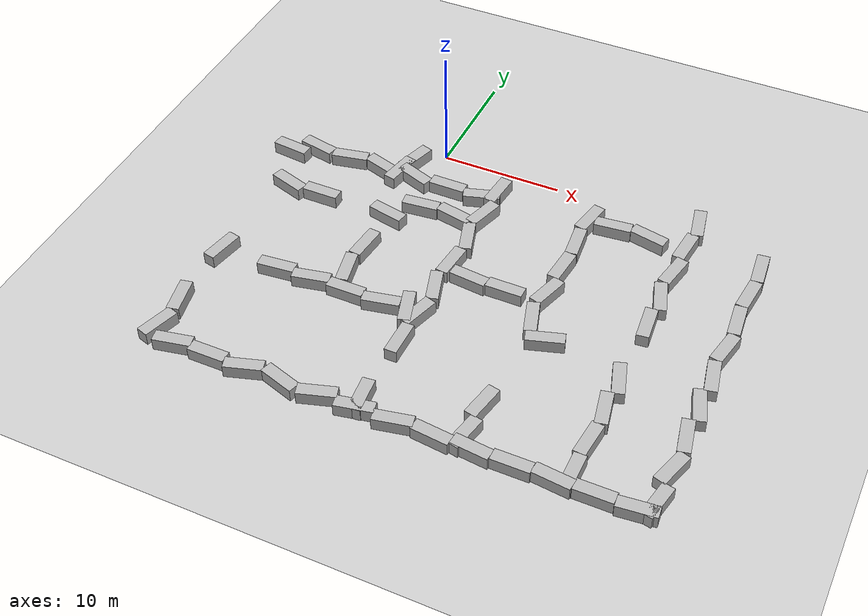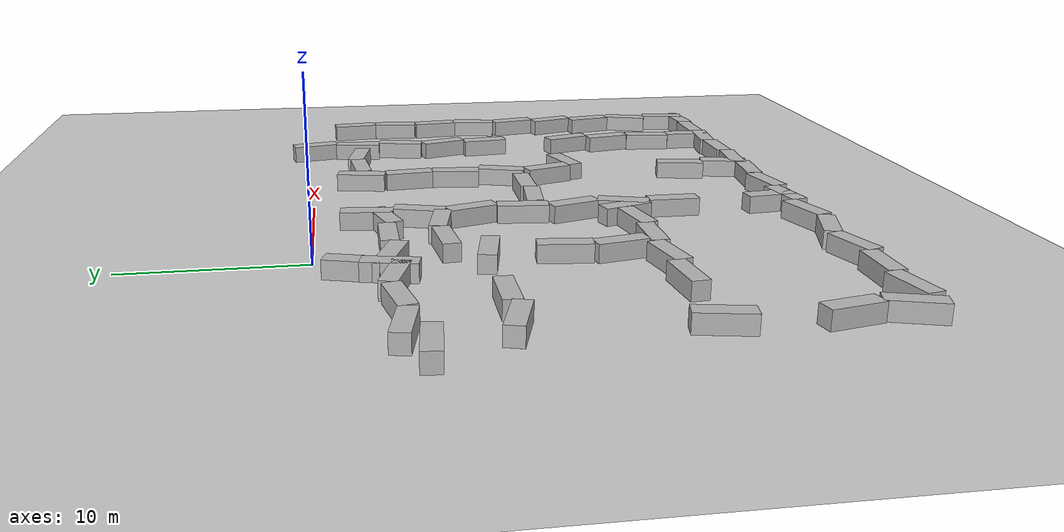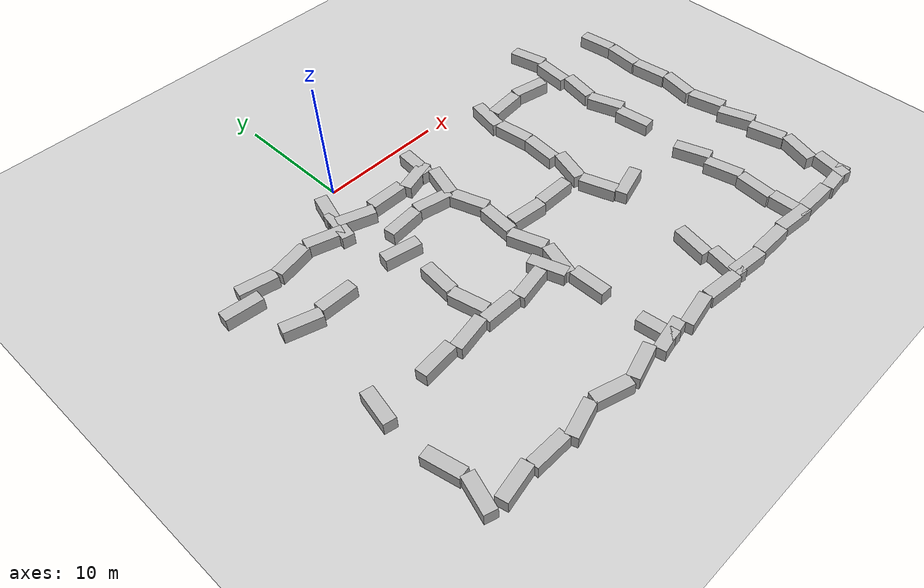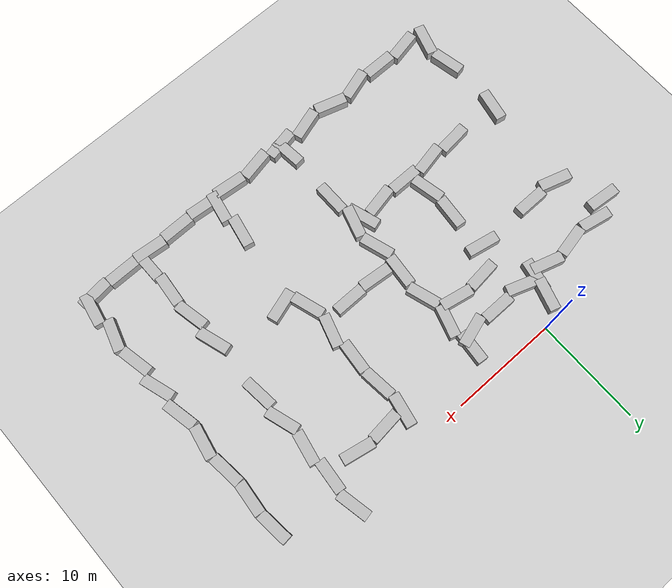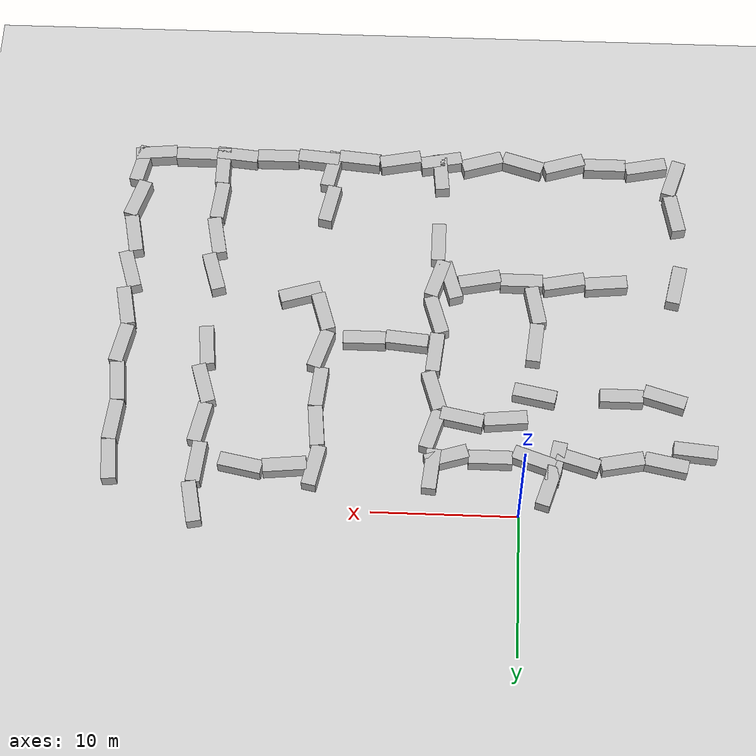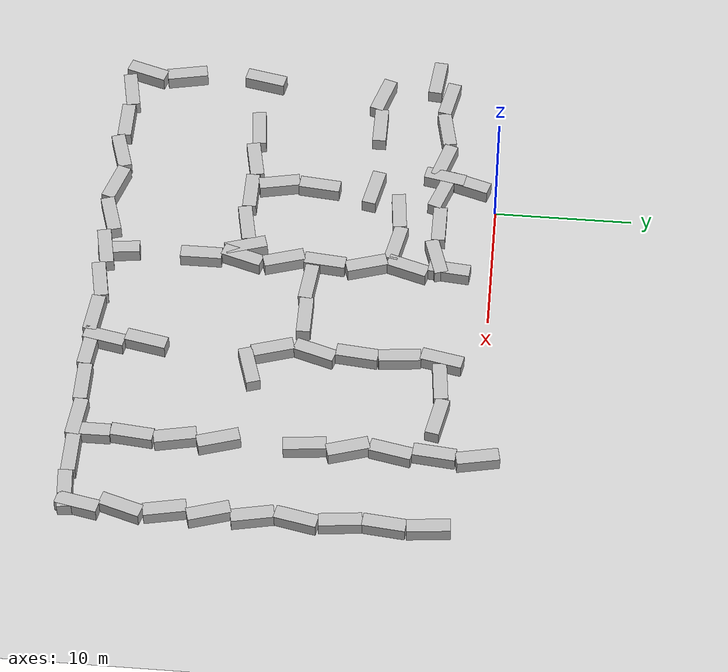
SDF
<sdf version="1.6">
 <world name="default">
  <model name="ground_plane">
   <static>1</static>
   <link name="link">
    <collision name="collision">
     <geometry><plane><normal>0 0 1</normal><size>100 100</size></plane></geometry>
     <surface>
      <contact><collide_bitmask>65535</collide_bitmask></contact>
      <friction><ode><mu>100</mu><mu2>50</mu2></ode></friction>
     </surface>
    </collision>
    <visual name="visual">
     <cast_shadows>0</cast_shadows>
     <geometry><plane><normal>0 0 1</normal><size>100 100</size></plane></geometry>
     <material>
      <script><uri>file://media/materials/scripts/gazebo.material</uri><name>Gazebo/Grey</name></script>
     </material>
    </visual>
   </link>
  </model>
  <model name="wall3">
   <static>1</static>
   <link name="chassis">
    <pose>0 0 1.5 0 -0 0</pose>
    <collision name="collision"><geometry><box><size>3 1 3</size></box></geometry></collision>
    <visual name="visual">
     <geometry><mesh><uri>model://brick_box_3x1x3/meshes/simple_box.dae</uri><scale>3 1 3</scale></mesh></geometry>
     <material>
      <script>
       <uri>model://brick_box_3x1x3/materials/scripts</uri>
       <uri>model://brick_box_3x1x3/materials/textures</uri>
       <name>BrickBox/Diffuse</name>
      </script>
     </material>
    </visual>
   </link>
   <pose>28 -27 -2 0 -0 1.3708</pose>
  </model>
  <model name="wall7">
   <static>1</static>
   <link name="chassis">
    <pose>0 0 1.5 0 -0 0</pose>
    <collision name="collision"><geometry><box><size>3 1 3</size></box></geometry></collision>
    <visual name="visual">
     <geometry><mesh><uri>model://brick_box_3x1x3/meshes/simple_box.dae</uri><scale>3 1 3</scale></mesh></geometry>
     <material>
      <script>
       <uri>model://brick_box_3x1x3/materials/scripts</uri>
       <uri>model://brick_box_3x1x3/materials/textures</uri>
       <name>BrickBox/Diffuse</name>
      </script>
     </material>
    </visual>
   </link>
   <pose>28 -24 -2 0 -0 1.2708</pose>
  </model>
  <model name="wall11">
   <static>1</static>
   <link name="chassis">
    <pose>0 0 1.5 0 -0 0</pose>
    <collision name="collision"><geometry><box><size>3 1 3</size></box></geometry></collision>
    <visual name="visual">
     <geometry><mesh><uri>model://brick_box_3x1x3/meshes/simple_box.dae</uri><scale>3 1 3</scale></mesh></geometry>
     <material>
      <script>
       <uri>model://brick_box_3x1x3/materials/scripts</uri>
       <uri>model://brick_box_3x1x3/materials/textures</uri>
       <name>BrickBox/Diffuse</name>
      </script>
     </material>
    </visual>
   </link>
   <pose>28 -21 -2 0 -0 1.7708</pose>
  </model>
  <model name="wall15">
   <static>1</static>
   <link name="chassis">
    <pose>0 0 1.5 0 -0 0</pose>
    <collision name="collision"><geometry><box><size>3 1 3</size></box></geometry></collision>
    <visual name="visual">
     <geometry><mesh><uri>model://brick_box_3x1x3/meshes/simple_box.dae</uri><scale>3 1 3</scale></mesh></geometry>
     <material>
      <script>
       <uri>model://brick_box_3x1x3/materials/scripts</uri>
       <uri>model://brick_box_3x1x3/materials/textures</uri>
       <name>BrickBox/Diffuse</name>
      </script>
     </material>
    </visual>
   </link>
   <pose>28 -18 -2 0 -0 1.8708</pose>
  </model>
  <model name="wall19">
   <static>1</static>
   <link name="chassis">
    <pose>0 0 1.5 0 -0 0</pose>
    <collision name="collision"><geometry><box><size>3 1 3</size></box></geometry></collision>
    <visual name="visual">
     <geometry><mesh><uri>model://brick_box_3x1x3/meshes/simple_box.dae</uri><scale>3 1 3</scale></mesh></geometry>
     <material>
      <script>
       <uri>model://brick_box_3x1x3/materials/scripts</uri>
       <uri>model://brick_box_3x1x3/materials/textures</uri>
       <name>BrickBox/Diffuse</name>
      </script>
     </material>
    </visual>
   </link>
   <pose>28 -15 -2 0 -0 1.7708</pose>
  </model>
  <model name="wall23">
   <static>1</static>
   <link name="chassis">
    <pose>0 0 1.5 0 -0 0</pose>
    <collision name="collision"><geometry><box><size>3 1 3</size></box></geometry></collision>
    <visual name="visual">
     <geometry><mesh><uri>model://brick_box_3x1x3/meshes/simple_box.dae</uri><scale>3 1 3</scale></mesh></geometry>
     <material>
      <script>
       <uri>model://brick_box_3x1x3/materials/scripts</uri>
       <uri>model://brick_box_3x1x3/materials/textures</uri>
       <name>BrickBox/Diffuse</name>
      </script>
     </material>
    </visual>
   </link>
   <pose>28 -12 -2 0 -0 1.3708</pose>
  </model>
  <model name="wall24">
   <static>1</static>
   <link name="chassis">
    <pose>0 0 1.5 0 -0 0</pose>
    <collision name="collision"><geometry><box><size>3 1 3</size></box></geometry></collision>
    <visual name="visual">
     <geometry><mesh><uri>model://brick_box_3x1x3/meshes/simple_box.dae</uri><scale>3 1 3</scale></mesh></geometry>
     <material>
      <script>
       <uri>model://brick_box_3x1x3/materials/scripts</uri>
       <uri>model://brick_box_3x1x3/materials/textures</uri>
       <name>BrickBox/Diffuse</name>
      </script>
     </material>
    </visual>
   </link>
   <pose>-9 -28 -2 0 -0 0.2</pose>
  </model>
  <model name="wall27">
   <static>1</static>
   <link name="chassis">
    <pose>0 0 1.5 0 -0 0</pose>
    <collision name="collision"><geometry><box><size>3 1 3</size></box></geometry></collision>
    <visual name="visual">
     <geometry><mesh><uri>model://brick_box_3x1x3/meshes/simple_box.dae</uri><scale>3 1 3</scale></mesh></geometry>
     <material>
      <script>
       <uri>model://brick_box_3x1x3/materials/scripts</uri>
       <uri>model://brick_box_3x1x3/materials/textures</uri>
       <name>BrickBox/Diffuse</name>
      </script>
     </material>
    </visual>
   </link>
   <pose>28 -9 -2 0 -0 1.6708</pose>
  </model>
  <model name="wall28">
   <static>1</static>
   <link name="chassis">
    <pose>0 0 1.5 0 -0 0</pose>
    <collision name="collision"><geometry><box><size>3 1 3</size></box></geometry></collision>
    <visual name="visual">
     <geometry><mesh><uri>model://brick_box_3x1x3/meshes/simple_box.dae</uri><scale>3 1 3</scale></mesh></geometry>
     <material>
      <script>
       <uri>model://brick_box_3x1x3/materials/scripts</uri>
       <uri>model://brick_box_3x1x3/materials/textures</uri>
       <name>BrickBox/Diffuse</name>
      </script>
     </material>
    </visual>
   </link>
   <pose>-6 -28 -2 0 -0 0</pose>
  </model>
  <model name="wall31">
   <static>1</static>
   <link name="chassis">
    <pose>0 0 1.5 0 -0 0</pose>
    <collision name="collision"><geometry><box><size>3 1 3</size></box></geometry></collision>
    <visual name="visual">
     <geometry><mesh><uri>model://brick_box_3x1x3/meshes/simple_box.dae</uri><scale>3 1 3</scale></mesh></geometry>
     <material>
      <script>
       <uri>model://brick_box_3x1x3/materials/scripts</uri>
       <uri>model://brick_box_3x1x3/materials/textures</uri>
       <name>BrickBox/Diffuse</name>
      </script>
     </material>
    </visual>
   </link>
   <pose>28 -6 -2 0 -0 1.4708</pose>
  </model>
  <model name="wall32">
   <static>1</static>
   <link name="chassis">
    <pose>0 0 1.5 0 -0 0</pose>
    <collision name="collision"><geometry><box><size>3 1 3</size></box></geometry></collision>
    <visual name="visual">
     <geometry><mesh><uri>model://brick_box_3x1x3/meshes/simple_box.dae</uri><scale>3 1 3</scale></mesh></geometry>
     <material>
      <script>
       <uri>model://brick_box_3x1x3/materials/scripts</uri>
       <uri>model://brick_box_3x1x3/materials/textures</uri>
       <name>BrickBox/Diffuse</name>
      </script>
     </material>
    </visual>
   </link>
   <pose>-3 -28 -2 0 -0 0.3</pose>
  </model>
  <model name="wall35">
   <static>1</static>
   <link name="chassis">
    <pose>0 0 1.5 0 -0 0</pose>
    <collision name="collision"><geometry><box><size>3 1 3</size></box></geometry></collision>
    <visual name="visual">
     <geometry><mesh><uri>model://brick_box_3x1x3/meshes/simple_box.dae</uri><scale>3 1 3</scale></mesh></geometry>
     <material>
      <script>
       <uri>model://brick_box_3x1x3/materials/scripts</uri>
       <uri>model://brick_box_3x1x3/materials/textures</uri>
       <name>BrickBox/Diffuse</name>
      </script>
     </material>
    </visual>
   </link>
   <pose>28 -3 -2 0 -0 1.6708</pose>
  </model>
  <model name="wall36">
   <static>1</static>
   <link name="chassis">
    <pose>0 0 1.5 0 -0 0</pose>
    <collision name="collision"><geometry><box><size>3 1 3</size></box></geometry></collision>
    <visual name="visual">
     <geometry><mesh><uri>model://brick_box_3x1x3/meshes/simple_box.dae</uri><scale>3 1 3</scale></mesh></geometry>
     <material>
      <script>
       <uri>model://brick_box_3x1x3/materials/scripts</uri>
       <uri>model://brick_box_3x1x3/materials/textures</uri>
       <name>BrickBox/Diffuse</name>
      </script>
     </material>
    </visual>
   </link>
   <pose>0 -28 -2 0 0 -0.3</pose>
  </model>
  <model name="wall40">
   <static>1</static>
   <link name="chassis">
    <pose>0 0 1.5 0 -0 0</pose>
    <collision name="collision"><geometry><box><size>3 1 3</size></box></geometry></collision>
    <visual name="visual">
     <geometry><mesh><uri>model://brick_box_3x1x3/meshes/simple_box.dae</uri><scale>3 1 3</scale></mesh></geometry>
     <material>
      <script>
       <uri>model://brick_box_3x1x3/materials/scripts</uri>
       <uri>model://brick_box_3x1x3/materials/textures</uri>
       <name>BrickBox/Diffuse</name>
      </script>
     </material>
    </visual>
   </link>
   <pose>3 -28 -2 0 -0 0.3</pose>
  </model>
  <model name="wall44">
   <static>1</static>
   <link name="chassis">
    <pose>0 0 1.5 0 -0 0</pose>
    <collision name="collision"><geometry><box><size>3 1 3</size></box></geometry></collision>
    <visual name="visual">
     <geometry><mesh><uri>model://brick_box_3x1x3/meshes/simple_box.dae</uri><scale>3 1 3</scale></mesh></geometry>
     <material>
      <script>
       <uri>model://brick_box_3x1x3/materials/scripts</uri>
       <uri>model://brick_box_3x1x3/materials/textures</uri>
       <name>BrickBox/Diffuse</name>
      </script>
     </material>
    </visual>
   </link>
   <pose>6 -28 -2 0 -0 0.2</pose>
  </model>
  <model name="wall48">
   <static>1</static>
   <link name="chassis">
    <pose>0 0 1.5 0 -0 0</pose>
    <collision name="collision"><geometry><box><size>3 1 3</size></box></geometry></collision>
    <visual name="visual">
     <geometry><mesh><uri>model://brick_box_3x1x3/meshes/simple_box.dae</uri><scale>3 1 3</scale></mesh></geometry>
     <material>
      <script>
       <uri>model://brick_box_3x1x3/materials/scripts</uri>
       <uri>model://brick_box_3x1x3/materials/textures</uri>
       <name>BrickBox/Diffuse</name>
      </script>
     </material>
    </visual>
   </link>
   <pose>9 -28 -2 0 -0 0.2</pose>
  </model>
  <model name="wall52">
   <static>1</static>
   <link name="chassis">
    <pose>0 0 1.5 0 -0 0</pose>
    <collision name="collision"><geometry><box><size>3 1 3</size></box></geometry></collision>
    <visual name="visual">
     <geometry><mesh><uri>model://brick_box_3x1x3/meshes/simple_box.dae</uri><scale>3 1 3</scale></mesh></geometry>
     <material>
      <script>
       <uri>model://brick_box_3x1x3/materials/scripts</uri>
       <uri>model://brick_box_3x1x3/materials/textures</uri>
       <name>BrickBox/Diffuse</name>
      </script>
     </material>
    </visual>
   </link>
   <pose>12 -28 -2 0 0 -0.1</pose>
  </model>
  <model name="wall56">
   <static>1</static>
   <link name="chassis">
    <pose>0 0 1.5 0 -0 0</pose>
    <collision name="collision"><geometry><box><size>3 1 3</size></box></geometry></collision>
    <visual name="visual">
     <geometry><mesh><uri>model://brick_box_3x1x3/meshes/simple_box.dae</uri><scale>3 1 3</scale></mesh></geometry>
     <material>
      <script>
       <uri>model://brick_box_3x1x3/materials/scripts</uri>
       <uri>model://brick_box_3x1x3/materials/textures</uri>
       <name>BrickBox/Diffuse</name>
      </script>
     </material>
    </visual>
   </link>
   <pose>15 -28 -2 0 0 -0.1</pose>
  </model>
  <model name="wall60">
   <static>1</static>
   <link name="chassis">
    <pose>0 0 1.5 0 -0 0</pose>
    <collision name="collision"><geometry><box><size>3 1 3</size></box></geometry></collision>
    <visual name="visual">
     <geometry><mesh><uri>model://brick_box_3x1x3/meshes/simple_box.dae</uri><scale>3 1 3</scale></mesh></geometry>
     <material>
      <script>
       <uri>model://brick_box_3x1x3/materials/scripts</uri>
       <uri>model://brick_box_3x1x3/materials/textures</uri>
       <name>BrickBox/Diffuse</name>
      </script>
     </material>
    </visual>
   </link>
   <pose>18 -28 -2 0 -0 0</pose>
  </model>
  <model name="wall64">
   <static>1</static>
   <link name="chassis">
    <pose>0 0 1.5 0 -0 0</pose>
    <collision name="collision"><geometry><box><size>3 1 3</size></box></geometry></collision>
    <visual name="visual">
     <geometry><mesh><uri>model://brick_box_3x1x3/meshes/simple_box.dae</uri><scale>3 1 3</scale></mesh></geometry>
     <material>
      <script>
       <uri>model://brick_box_3x1x3/materials/scripts</uri>
       <uri>model://brick_box_3x1x3/materials/textures</uri>
       <name>BrickBox/Diffuse</name>
      </script>
     </material>
    </visual>
   </link>
   <pose>21 -28 -2 0 0 -0.1</pose>
  </model>
  <model name="wall68">
   <static>1</static>
   <link name="chassis">
    <pose>0 0 1.5 0 -0 0</pose>
    <collision name="collision"><geometry><box><size>3 1 3</size></box></geometry></collision>
    <visual name="visual">
     <geometry><mesh><uri>model://brick_box_3x1x3/meshes/simple_box.dae</uri><scale>3 1 3</scale></mesh></geometry>
     <material>
      <script>
       <uri>model://brick_box_3x1x3/materials/scripts</uri>
       <uri>model://brick_box_3x1x3/materials/textures</uri>
       <name>BrickBox/Diffuse</name>
      </script>
     </material>
    </visual>
   </link>
   <pose>24 -28 -2 0 -0 0</pose>
  </model>
  <model name="wall72">
   <static>1</static>
   <link name="chassis">
    <pose>0 0 1.5 0 -0 0</pose>
    <collision name="collision"><geometry><box><size>3 1 3</size></box></geometry></collision>
    <visual name="visual">
     <geometry><mesh><uri>model://brick_box_3x1x3/meshes/simple_box.dae</uri><scale>3 1 3</scale></mesh></geometry>
     <material>
      <script>
       <uri>model://brick_box_3x1x3/materials/scripts</uri>
       <uri>model://brick_box_3x1x3/materials/textures</uri>
       <name>BrickBox/Diffuse</name>
      </script>
     </material>
    </visual>
   </link>
   <pose>27 -28 -2 0 -0 0.1</pose>
  </model>
  <model name="wall76">
   <static>1</static>
   <link name="chassis">
    <pose>0 0 1.5 0 -0 0</pose>
    <collision name="collision"><geometry><box><size>3 1 3</size></box></geometry></collision>
    <visual name="visual">
     <geometry><mesh><uri>model://brick_box_3x1x3/meshes/simple_box.dae</uri><scale>3 1 3</scale></mesh></geometry>
     <material>
      <script>
       <uri>model://brick_box_3x1x3/materials/scripts</uri>
       <uri>model://brick_box_3x1x3/materials/textures</uri>
       <name>BrickBox/Diffuse</name>
      </script>
     </material>
    </visual>
   </link>
   <pose>6 -27 -2 0 -0 1.6708</pose>
  </model>
  <model name="wall77">
   <static>1</static>
   <link name="chassis">
    <pose>0 0 1.5 0 -0 0</pose>
    <collision name="collision"><geometry><box><size>3 1 3</size></box></geometry></collision>
    <visual name="visual">
     <geometry><mesh><uri>model://brick_box_3x1x3/meshes/simple_box.dae</uri><scale>3 1 3</scale></mesh></geometry>
     <material>
      <script>
       <uri>model://brick_box_3x1x3/materials/scripts</uri>
       <uri>model://brick_box_3x1x3/materials/textures</uri>
       <name>BrickBox/Diffuse</name>
      </script>
     </material>
    </visual>
   </link>
   <pose>5.0602 -17.858 -2 0 -0 1.8708</pose>
  </model>
  <model name="wall78">
   <static>1</static>
   <link name="chassis">
    <pose>0 0 1.5 0 -0 0</pose>
    <collision name="collision"><geometry><box><size>3 1 3</size></box></geometry></collision>
    <visual name="visual">
     <geometry><mesh><uri>model://brick_box_3x1x3/meshes/simple_box.dae</uri><scale>3 1 3</scale></mesh></geometry>
     <material>
      <script>
       <uri>model://brick_box_3x1x3/materials/scripts</uri>
       <uri>model://brick_box_3x1x3/materials/textures</uri>
       <name>BrickBox/Diffuse</name>
      </script>
     </material>
    </visual>
   </link>
   <pose>6 -21 -2 0 -0 1.5708</pose>
  </model>
  <model name="wall79">
   <static>1</static>
   <link name="chassis">
    <pose>0 0 1.5 0 -0 0</pose>
    <collision name="collision"><geometry><box><size>3 1 3</size></box></geometry></collision>
    <visual name="visual">
     <geometry><mesh><uri>model://brick_box_3x1x3/meshes/simple_box.dae</uri><scale>3 1 3</scale></mesh></geometry>
     <material>
      <script>
       <uri>model://brick_box_3x1x3/materials/scripts</uri>
       <uri>model://brick_box_3x1x3/materials/textures</uri>
       <name>BrickBox/Diffuse</name>
      </script>
     </material>
    </visual>
   </link>
   <pose>6 -18 -2 0 -0 1.2708</pose>
  </model>
  <model name="wall80">
   <static>1</static>
   <link name="chassis">
    <pose>0 0 1.5 0 -0 0</pose>
    <collision name="collision"><geometry><box><size>3 1 3</size></box></geometry></collision>
    <visual name="visual">
     <geometry><mesh><uri>model://brick_box_3x1x3/meshes/simple_box.dae</uri><scale>3 1 3</scale></mesh></geometry>
     <material>
      <script>
       <uri>model://brick_box_3x1x3/materials/scripts</uri>
       <uri>model://brick_box_3x1x3/materials/textures</uri>
       <name>BrickBox/Diffuse</name>
      </script>
     </material>
    </visual>
   </link>
   <pose>6 -15 -2 0 -0 1.8708</pose>
  </model>
  <model name="wall81">
   <static>1</static>
   <link name="chassis">
    <pose>0 0 1.5 0 -0 0</pose>
    <collision name="collision"><geometry><box><size>3 1 3</size></box></geometry></collision>
    <visual name="visual">
     <geometry><mesh><uri>model://brick_box_3x1x3/meshes/simple_box.dae</uri><scale>3 1 3</scale></mesh></geometry>
     <material>
      <script>
       <uri>model://brick_box_3x1x3/materials/scripts</uri>
       <uri>model://brick_box_3x1x3/materials/textures</uri>
       <name>BrickBox/Diffuse</name>
      </script>
     </material>
    </visual>
   </link>
   <pose>6 -12 -2 0 -0 1.4708</pose>
  </model>
  <model name="wall82">
   <static>1</static>
   <link name="chassis">
    <pose>0 0 1.5 0 -0 0</pose>
    <collision name="collision"><geometry><box><size>3 1 3</size></box></geometry></collision>
    <visual name="visual">
     <geometry><mesh><uri>model://brick_box_3x1x3/meshes/simple_box.dae</uri><scale>3 1 3</scale></mesh></geometry>
     <material>
      <script>
       <uri>model://brick_box_3x1x3/materials/scripts</uri>
       <uri>model://brick_box_3x1x3/materials/textures</uri>
       <name>BrickBox/Diffuse</name>
      </script>
     </material>
    </visual>
   </link>
   <pose>6 -9 -2 0 -0 1.8708</pose>
  </model>
  <model name="wall83">
   <static>1</static>
   <link name="chassis">
    <pose>0 0 1.5 0 -0 0</pose>
    <collision name="collision"><geometry><box><size>3 1 3</size></box></geometry></collision>
    <visual name="visual">
     <geometry><mesh><uri>model://brick_box_3x1x3/meshes/simple_box.dae</uri><scale>3 1 3</scale></mesh></geometry>
     <material>
      <script>
       <uri>model://brick_box_3x1x3/materials/scripts</uri>
       <uri>model://brick_box_3x1x3/materials/textures</uri>
       <name>BrickBox/Diffuse</name>
      </script>
     </material>
    </visual>
   </link>
   <pose>6 -6 -2 0 -0 1.2708</pose>
  </model>
  <model name="wall84">
   <static>1</static>
   <link name="chassis">
    <pose>0 0 1.5 0 -0 0</pose>
    <collision name="collision"><geometry><box><size>3 1 3</size></box></geometry></collision>
    <visual name="visual">
     <geometry><mesh><uri>model://brick_box_3x1x3/meshes/simple_box.dae</uri><scale>3 1 3</scale></mesh></geometry>
     <material>
      <script>
       <uri>model://brick_box_3x1x3/materials/scripts</uri>
       <uri>model://brick_box_3x1x3/materials/textures</uri>
       <name>BrickBox/Diffuse</name>
      </script>
     </material>
    </visual>
   </link>
   <pose>6 -3 -2 0 -0 1.4708</pose>
  </model>
  <model name="wall98">
   <static>1</static>
   <link name="chassis">
    <pose>0 0 1.5 0 -0 0</pose>
    <collision name="collision"><geometry><box><size>3 1 3</size></box></geometry></collision>
    <visual name="visual">
     <geometry><mesh><uri>model://brick_box_3x1x3/meshes/simple_box.dae</uri><scale>3 1 3</scale></mesh></geometry>
     <material>
      <script>
       <uri>model://brick_box_3x1x3/materials/scripts</uri>
       <uri>model://brick_box_3x1x3/materials/textures</uri>
       <name>BrickBox/Diffuse</name>
      </script>
     </material>
    </visual>
   </link>
   <pose>-6 -18 -2 0 -0 0.1</pose>
  </model>
  <model name="wall99">
   <static>1</static>
   <link name="chassis">
    <pose>0 0 1.5 0 -0 0</pose>
    <collision name="collision"><geometry><box><size>3 1 3</size></box></geometry></collision>
    <visual name="visual">
     <geometry><mesh><uri>model://brick_box_3x1x3/meshes/simple_box.dae</uri><scale>3 1 3</scale></mesh></geometry>
     <material>
      <script>
       <uri>model://brick_box_3x1x3/materials/scripts</uri>
       <uri>model://brick_box_3x1x3/materials/textures</uri>
       <name>BrickBox/Diffuse</name>
      </script>
     </material>
    </visual>
   </link>
   <pose>-3 -18 -2 0 -0 0.2</pose>
  </model>
  <model name="wall100">
   <static>1</static>
   <link name="chassis">
    <pose>0 0 1.5 0 -0 0</pose>
    <collision name="collision"><geometry><box><size>3 1 3</size></box></geometry></collision>
    <visual name="visual">
     <geometry><mesh><uri>model://brick_box_3x1x3/meshes/simple_box.dae</uri><scale>3 1 3</scale></mesh></geometry>
     <material>
      <script>
       <uri>model://brick_box_3x1x3/materials/scripts</uri>
       <uri>model://brick_box_3x1x3/materials/textures</uri>
       <name>BrickBox/Diffuse</name>
      </script>
     </material>
    </visual>
   </link>
   <pose>0 -18 -2 0 -0 0</pose>
  </model>
  <model name="wall101">
   <static>1</static>
   <link name="chassis">
    <pose>0 0 1.5 0 -0 0</pose>
    <collision name="collision"><geometry><box><size>3 1 3</size></box></geometry></collision>
    <visual name="visual">
     <geometry><mesh><uri>model://brick_box_3x1x3/meshes/simple_box.dae</uri><scale>3 1 3</scale></mesh></geometry>
     <material>
      <script>
       <uri>model://brick_box_3x1x3/materials/scripts</uri>
       <uri>model://brick_box_3x1x3/materials/textures</uri>
       <name>BrickBox/Diffuse</name>
      </script>
     </material>
    </visual>
   </link>
   <pose>3 -18 -2 0 -0 0.2</pose>
  </model>
  <model name="wall103">
   <static>1</static>
   <link name="chassis">
    <pose>0 0 1.5 0 -0 0</pose>
    <collision name="collision"><geometry><box><size>3 1 3</size></box></geometry></collision>
    <visual name="visual">
     <geometry><mesh><uri>model://brick_box_3x1x3/meshes/simple_box.dae</uri><scale>3 1 3</scale></mesh></geometry>
     <material>
      <script>
       <uri>model://brick_box_3x1x3/materials/scripts</uri>
       <uri>model://brick_box_3x1x3/materials/textures</uri>
       <name>BrickBox/Diffuse</name>
      </script>
     </material>
    </visual>
   </link>
   <pose>-11 -27 -2 0 -0 1.2708</pose>
  </model>
  <model name="wall104">
   <static>1</static>
   <link name="chassis">
    <pose>0 0 1.5 0 -0 0</pose>
    <collision name="collision"><geometry><box><size>3 1 3</size></box></geometry></collision>
    <visual name="visual">
     <geometry><mesh><uri>model://brick_box_3x1x3/meshes/simple_box.dae</uri><scale>3 1 3</scale></mesh></geometry>
     <material>
      <script>
       <uri>model://brick_box_3x1x3/materials/scripts</uri>
       <uri>model://brick_box_3x1x3/materials/textures</uri>
       <name>BrickBox/Diffuse</name>
      </script>
     </material>
    </visual>
   </link>
   <pose>-11 -24 -2 0 -0 1.7708</pose>
  </model>
  <model name="wall105">
   <static>1</static>
   <link name="chassis">
    <pose>0 0 1.5 0 -0 0</pose>
    <collision name="collision"><geometry><box><size>3 1 3</size></box></geometry></collision>
    <visual name="visual">
     <geometry><mesh><uri>model://brick_box_3x1x3/meshes/simple_box.dae</uri><scale>3 1 3</scale></mesh></geometry>
     <material>
      <script>
       <uri>model://brick_box_3x1x3/materials/scripts</uri>
       <uri>model://brick_box_3x1x3/materials/textures</uri>
       <name>BrickBox/Diffuse</name>
      </script>
     </material>
    </visual>
   </link>
   <pose>-11 -18 -2 0 -0 1.3708</pose>
  </model>
  <model name="wall115">
   <static>1</static>
   <link name="chassis">
    <pose>0 0 1.5 0 -0 0</pose>
    <collision name="collision"><geometry><box><size>3 1 3</size></box></geometry></collision>
    <visual name="visual">
     <geometry><mesh><uri>model://brick_box_3x1x3/meshes/simple_box.dae</uri><scale>3 1 3</scale></mesh></geometry>
     <material>
      <script>
       <uri>model://brick_box_3x1x3/materials/scripts</uri>
       <uri>model://brick_box_3x1x3/materials/textures</uri>
       <name>BrickBox/Diffuse</name>
      </script>
     </material>
    </visual>
   </link>
   <pose>-2.48296 -3.83697 -2 0 -0 1.3708</pose>
  </model>
  <model name="wall124">
   <static>1</static>
   <link name="chassis">
    <pose>0 0 1.5 0 -0 0</pose>
    <collision name="collision"><geometry><box><size>3 1 3</size></box></geometry></collision>
    <visual name="visual">
     <geometry><mesh><uri>model://brick_box_3x1x3/meshes/simple_box.dae</uri><scale>3 1 3</scale></mesh></geometry>
     <material>
      <script>
       <uri>model://brick_box_3x1x3/materials/scripts</uri>
       <uri>model://brick_box_3x1x3/materials/textures</uri>
       <name>BrickBox/Diffuse</name>
      </script>
     </material>
    </visual>
   </link>
   <pose>-12 -5 -2 0 0 -0.1</pose>
  </model>
  <model name="wall139">
   <static>1</static>
   <link name="chassis">
    <pose>0 0 1.5 0 -0 0</pose>
    <collision name="collision"><geometry><box><size>3 1 3</size></box></geometry></collision>
    <visual name="visual">
     <geometry><mesh><uri>model://brick_box_3x1x3/meshes/simple_box.dae</uri><scale>3 1 3</scale></mesh></geometry>
     <material>
      <script>
       <uri>model://brick_box_3x1x3/materials/scripts</uri>
       <uri>model://brick_box_3x1x3/materials/textures</uri>
       <name>BrickBox/Diffuse</name>
      </script>
     </material>
    </visual>
   </link>
   <pose>-10 -4 -2 0 0 -0.2</pose>
  </model>
  <model name="wall140">
   <static>1</static>
   <link name="chassis">
    <pose>0 0 1.5 0 -0 0</pose>
    <collision name="collision"><geometry><box><size>3 1 3</size></box></geometry></collision>
    <visual name="visual">
     <geometry><mesh><uri>model://brick_box_3x1x3/meshes/simple_box.dae</uri><scale>3 1 3</scale></mesh></geometry>
     <material>
      <script>
       <uri>model://brick_box_3x1x3/materials/scripts</uri>
       <uri>model://brick_box_3x1x3/materials/textures</uri>
       <name>BrickBox/Diffuse</name>
      </script>
     </material>
    </visual>
   </link>
   <pose>-7 -4 -2 0 -0 0.2</pose>
  </model>
  <model name="wall141">
   <static>1</static>
   <link name="chassis">
    <pose>0 0 1.5 0 -0 0</pose>
    <collision name="collision"><geometry><box><size>3 1 3</size></box></geometry></collision>
    <visual name="visual">
     <geometry><mesh><uri>model://brick_box_3x1x3/meshes/simple_box.dae</uri><scale>3 1 3</scale></mesh></geometry>
     <material>
      <script>
       <uri>model://brick_box_3x1x3/materials/scripts</uri>
       <uri>model://brick_box_3x1x3/materials/textures</uri>
       <name>BrickBox/Diffuse</name>
      </script>
     </material>
    </visual>
   </link>
   <pose>-4 -4 -2 0 0 -0.3</pose>
  </model>
  <model name="wall142">
   <static>1</static>
   <link name="chassis">
    <pose>0 0 1.5 0 -0 0</pose>
    <collision name="collision"><geometry><box><size>3 1 3</size></box></geometry></collision>
    <visual name="visual">
     <geometry><mesh><uri>model://brick_box_3x1x3/meshes/simple_box.dae</uri><scale>3 1 3</scale></mesh></geometry>
     <material>
      <script>
       <uri>model://brick_box_3x1x3/materials/scripts</uri>
       <uri>model://brick_box_3x1x3/materials/textures</uri>
       <name>BrickBox/Diffuse</name>
      </script>
     </material>
    </visual>
   </link>
   <pose>2 -4 -2 0 -0 0</pose>
  </model>
  <model name="wall143">
   <static>1</static>
   <link name="chassis">
    <pose>0 0 1.5 0 -0 0</pose>
    <collision name="collision"><geometry><box><size>3 1 3</size></box></geometry></collision>
    <visual name="visual">
     <geometry><mesh><uri>model://brick_box_3x1x3/meshes/simple_box.dae</uri><scale>3 1 3</scale></mesh></geometry>
     <material>
      <script>
       <uri>model://brick_box_3x1x3/materials/scripts</uri>
       <uri>model://brick_box_3x1x3/materials/textures</uri>
       <name>BrickBox/Diffuse</name>
      </script>
     </material>
    </visual>
   </link>
   <pose>5 -4 -2 0 -0 0.3</pose>
  </model>
  <model name="wall144">
   <static>1</static>
   <link name="chassis">
    <pose>0 0 1.5 0 -0 0</pose>
    <collision name="collision"><geometry><box><size>3 1 3</size></box></geometry></collision>
    <visual name="visual">
     <geometry><mesh><uri>model://brick_box_3x1x3/meshes/simple_box.dae</uri><scale>3 1 3</scale></mesh></geometry>
     <material>
      <script>
       <uri>model://brick_box_3x1x3/materials/scripts</uri>
       <uri>model://brick_box_3x1x3/materials/textures</uri>
       <name>BrickBox/Diffuse</name>
      </script>
     </material>
    </visual>
   </link>
   <pose>-1 -16 -2 0 -0 1.7708</pose>
  </model>
  <model name="wall145">
   <static>1</static>
   <link name="chassis">
    <pose>0 0 1.5 0 -0 0</pose>
    <collision name="collision"><geometry><box><size>3 1 3</size></box></geometry></collision>
    <visual name="visual">
     <geometry><mesh><uri>model://brick_box_3x1x3/meshes/simple_box.dae</uri><scale>3 1 3</scale></mesh></geometry>
     <material>
      <script>
       <uri>model://brick_box_3x1x3/materials/scripts</uri>
       <uri>model://brick_box_3x1x3/materials/textures</uri>
       <name>BrickBox/Diffuse</name>
      </script>
     </material>
    </visual>
   </link>
   <pose>-1 -13 -2 0 -0 1.4708</pose>
  </model>
  <model name="wall146">
   <static>1</static>
   <link name="chassis">
    <pose>0 0 1.5 0 -0 0</pose>
    <collision name="collision"><geometry><box><size>3 1 3</size></box></geometry></collision>
    <visual name="visual">
     <geometry><mesh><uri>model://brick_box_3x1x3/meshes/simple_box.dae</uri><scale>3 1 3</scale></mesh></geometry>
     <material>
      <script>
       <uri>model://brick_box_3x1x3/materials/scripts</uri>
       <uri>model://brick_box_3x1x3/materials/textures</uri>
       <name>BrickBox/Diffuse</name>
      </script>
     </material>
    </visual>
   </link>
   <pose>-1 -4 -2 0 -0 2.80068</pose>
  </model>
  <model name="wall147">
   <static>1</static>
   <link name="chassis">
    <pose>0 0 1.5 0 -0 0</pose>
    <collision name="collision"><geometry><box><size>3 1 3</size></box></geometry></collision>
    <visual name="visual">
     <geometry><mesh><uri>model://brick_box_3x1x3/meshes/simple_box.dae</uri><scale>3 1 3</scale></mesh></geometry>
     <material>
      <script>
       <uri>model://brick_box_3x1x3/materials/scripts</uri>
       <uri>model://brick_box_3x1x3/materials/textures</uri>
       <name>BrickBox/Diffuse</name>
      </script>
     </material>
    </visual>
   </link>
   <pose>-10 -9 -2 0 0 -0.3</pose>
  </model>
  <model name="wall148">
   <static>1</static>
   <link name="chassis">
    <pose>0 0 1.5 0 -0 0</pose>
    <collision name="collision"><geometry><box><size>3 1 3</size></box></geometry></collision>
    <visual name="visual">
     <geometry><mesh><uri>model://brick_box_3x1x3/meshes/simple_box.dae</uri><scale>3 1 3</scale></mesh></geometry>
     <material>
      <script>
       <uri>model://brick_box_3x1x3/materials/scripts</uri>
       <uri>model://brick_box_3x1x3/materials/textures</uri>
       <name>BrickBox/Diffuse</name>
      </script>
     </material>
    </visual>
   </link>
   <pose>-7 -9 -2 0 -0 0</pose>
  </model>
  <model name="wall149">
   <static>1</static>
   <link name="chassis">
    <pose>0 0 1.5 0 -0 0</pose>
    <collision name="collision"><geometry><box><size>3 1 3</size></box></geometry></collision>
    <visual name="visual">
     <geometry><mesh><uri>model://brick_box_3x1x3/meshes/simple_box.dae</uri><scale>3 1 3</scale></mesh></geometry>
     <material>
      <script>
       <uri>model://brick_box_3x1x3/materials/scripts</uri>
       <uri>model://brick_box_3x1x3/materials/textures</uri>
       <name>BrickBox/Diffuse</name>
      </script>
     </material>
    </visual>
   </link>
   <pose>-1 -9 -2 0 0 -0.2</pose>
  </model>
  <model name="wall150">
   <static>1</static>
   <link name="chassis">
    <pose>0 0 1.5 0 -0 0</pose>
    <collision name="collision"><geometry><box><size>3 1 3</size></box></geometry></collision>
    <visual name="visual">
     <geometry><mesh><uri>model://brick_box_3x1x3/meshes/simple_box.dae</uri><scale>3 1 3</scale></mesh></geometry>
     <material>
      <script>
       <uri>model://brick_box_3x1x3/materials/scripts</uri>
       <uri>model://brick_box_3x1x3/materials/textures</uri>
       <name>BrickBox/Diffuse</name>
      </script>
     </material>
    </visual>
   </link>
   <pose>1 -7 -2 0 -0 0.1</pose>
  </model>
  <model name="wall151">
   <static>1</static>
   <link name="chassis">
    <pose>0 0 1.5 0 -0 0</pose>
    <collision name="collision"><geometry><box><size>3 1 3</size></box></geometry></collision>
    <visual name="visual">
     <geometry><mesh><uri>model://brick_box_3x1x3/meshes/simple_box.dae</uri><scale>3 1 3</scale></mesh></geometry>
     <material>
      <script>
       <uri>model://brick_box_3x1x3/materials/scripts</uri>
       <uri>model://brick_box_3x1x3/materials/textures</uri>
       <name>BrickBox/Diffuse</name>
      </script>
     </material>
    </visual>
   </link>
   <pose>4 -7 -2 0 0 -0.2</pose>
  </model>
  <model name="wall152">
   <static>1</static>
   <link name="chassis">
    <pose>0 0 1.5 0 -0 0</pose>
    <collision name="collision"><geometry><box><size>3 1 3</size></box></geometry></collision>
    <visual name="visual">
     <geometry><mesh><uri>model://brick_box_3x1x3/meshes/simple_box.dae</uri><scale>3 1 3</scale></mesh></geometry>
     <material>
      <script>
       <uri>model://brick_box_3x1x3/materials/scripts</uri>
       <uri>model://brick_box_3x1x3/materials/textures</uri>
       <name>BrickBox/Diffuse</name>
      </script>
     </material>
    </visual>
   </link>
   <pose>-2 -2 -2 0 -0 1.2708</pose>
  </model>
  <model name="wall171">
   <static>1</static>
   <link name="chassis">
    <pose>0 0 1.5 0 -0 0</pose>
    <collision name="collision"><geometry><box><size>3 1 3</size></box></geometry></collision>
    <visual name="visual">
     <geometry><mesh><uri>model://brick_box_3x1x3/meshes/simple_box.dae</uri><scale>3 1 3</scale></mesh></geometry>
     <material>
      <script>
       <uri>model://brick_box_3x1x3/materials/scripts</uri>
       <uri>model://brick_box_3x1x3/materials/textures</uri>
       <name>BrickBox/Diffuse</name>
      </script>
     </material>
    </visual>
   </link>
   <pose>22 -27 -2 0 -0 1.5708</pose>
  </model>
  <model name="wall172">
   <static>1</static>
   <link name="chassis">
    <pose>0 0 1.5 0 -0 0</pose>
    <collision name="collision"><geometry><box><size>3 1 3</size></box></geometry></collision>
    <visual name="visual">
     <geometry><mesh><uri>model://brick_box_3x1x3/meshes/simple_box.dae</uri><scale>3 1 3</scale></mesh></geometry>
     <material>
      <script>
       <uri>model://brick_box_3x1x3/materials/scripts</uri>
       <uri>model://brick_box_3x1x3/materials/textures</uri>
       <name>BrickBox/Diffuse</name>
      </script>
     </material>
    </visual>
   </link>
   <pose>22 -24 -2 0 -0 1.4708</pose>
  </model>
  <model name="wall173">
   <static>1</static>
   <link name="chassis">
    <pose>0 0 1.5 0 -0 0</pose>
    <collision name="collision"><geometry><box><size>3 1 3</size></box></geometry></collision>
    <visual name="visual">
     <geometry><mesh><uri>model://brick_box_3x1x3/meshes/simple_box.dae</uri><scale>3 1 3</scale></mesh></geometry>
     <material>
      <script>
       <uri>model://brick_box_3x1x3/materials/scripts</uri>
       <uri>model://brick_box_3x1x3/materials/textures</uri>
       <name>BrickBox/Diffuse</name>
      </script>
     </material>
    </visual>
   </link>
   <pose>22 -21 -2 0 -0 1.7708</pose>
  </model>
  <model name="wall174">
   <static>1</static>
   <link name="chassis">
    <pose>0 0 1.5 0 -0 0</pose>
    <collision name="collision"><geometry><box><size>3 1 3</size></box></geometry></collision>
    <visual name="visual">
     <geometry><mesh><uri>model://brick_box_3x1x3/meshes/simple_box.dae</uri><scale>3 1 3</scale></mesh></geometry>
     <material>
      <script>
       <uri>model://brick_box_3x1x3/materials/scripts</uri>
       <uri>model://brick_box_3x1x3/materials/textures</uri>
       <name>BrickBox/Diffuse</name>
      </script>
     </material>
    </visual>
   </link>
   <pose>22 -18 -2 0 -0 1.8708</pose>
  </model>
  <model name="wall175">
   <static>1</static>
   <link name="chassis">
    <pose>0 0 1.5 0 -0 0</pose>
    <collision name="collision"><geometry><box><size>3 1 3</size></box></geometry></collision>
    <visual name="visual">
     <geometry><mesh><uri>model://brick_box_3x1x3/meshes/simple_box.dae</uri><scale>3 1 3</scale></mesh></geometry>
     <material>
      <script>
       <uri>model://brick_box_3x1x3/materials/scripts</uri>
       <uri>model://brick_box_3x1x3/materials/textures</uri>
       <name>BrickBox/Diffuse</name>
      </script>
     </material>
    </visual>
   </link>
   <pose>22.1121 -0.020501 -2 0 -0 1.7708</pose>
  </model>
  <model name="wall176">
   <static>1</static>
   <link name="chassis">
    <pose>0 0 1.5 0 -0 0</pose>
    <collision name="collision"><geometry><box><size>3 1 3</size></box></geometry></collision>
    <visual name="visual">
     <geometry><mesh><uri>model://brick_box_3x1x3/meshes/simple_box.dae</uri><scale>3 1 3</scale></mesh></geometry>
     <material>
      <script>
       <uri>model://brick_box_3x1x3/materials/scripts</uri>
       <uri>model://brick_box_3x1x3/materials/textures</uri>
       <name>BrickBox/Diffuse</name>
      </script>
     </material>
    </visual>
   </link>
   <pose>22 -12 -2 0 -0 1.6708</pose>
  </model>
  <model name="wall177">
   <static>1</static>
   <link name="chassis">
    <pose>0 0 1.5 0 -0 0</pose>
    <collision name="collision"><geometry><box><size>3 1 3</size></box></geometry></collision>
    <visual name="visual">
     <geometry><mesh><uri>model://brick_box_3x1x3/meshes/simple_box.dae</uri><scale>3 1 3</scale></mesh></geometry>
     <material>
      <script>
       <uri>model://brick_box_3x1x3/materials/scripts</uri>
       <uri>model://brick_box_3x1x3/materials/textures</uri>
       <name>BrickBox/Diffuse</name>
      </script>
     </material>
    </visual>
   </link>
   <pose>22 -9 -2 0 -0 1.8708</pose>
  </model>
  <model name="wall178">
   <static>1</static>
   <link name="chassis">
    <pose>0 0 1.5 0 -0 0</pose>
    <collision name="collision"><geometry><box><size>3 1 3</size></box></geometry></collision>
    <visual name="visual">
     <geometry><mesh><uri>model://brick_box_3x1x3/meshes/simple_box.dae</uri><scale>3 1 3</scale></mesh></geometry>
     <material>
      <script>
       <uri>model://brick_box_3x1x3/materials/scripts</uri>
       <uri>model://brick_box_3x1x3/materials/textures</uri>
       <name>BrickBox/Diffuse</name>
      </script>
     </material>
    </visual>
   </link>
   <pose>22 -6 -2 0 -0 1.3708</pose>
  </model>
  <model name="wall179">
   <static>1</static>
   <link name="chassis">
    <pose>0 0 1.5 0 -0 0</pose>
    <collision name="collision"><geometry><box><size>3 1 3</size></box></geometry></collision>
    <visual name="visual">
     <geometry><mesh><uri>model://brick_box_3x1x3/meshes/simple_box.dae</uri><scale>3 1 3</scale></mesh></geometry>
     <material>
      <script>
       <uri>model://brick_box_3x1x3/materials/scripts</uri>
       <uri>model://brick_box_3x1x3/materials/textures</uri>
       <name>BrickBox/Diffuse</name>
      </script>
     </material>
    </visual>
   </link>
   <pose>22 -3 -2 0 -0 1.4708</pose>
  </model>
  <model name="wall190">
   <static>1</static>
   <link name="chassis">
    <pose>0 0 1.5 0 -0 0</pose>
    <collision name="collision"><geometry><box><size>3 1 3</size></box></geometry></collision>
    <visual name="visual">
     <geometry><mesh><uri>model://brick_box_3x1x3/meshes/simple_box.dae</uri><scale>3 1 3</scale></mesh></geometry>
     <material>
      <script>
       <uri>model://brick_box_3x1x3/materials/scripts</uri>
       <uri>model://brick_box_3x1x3/materials/textures</uri>
       <name>BrickBox/Diffuse</name>
      </script>
     </material>
    </visual>
   </link>
   <pose>14 -27 -2 0 -0 1.3708</pose>
  </model>
  <model name="wall191">
   <static>1</static>
   <link name="chassis">
    <pose>0 0 1.5 0 -0 0</pose>
    <collision name="collision"><geometry><box><size>3 1 3</size></box></geometry></collision>
    <visual name="visual">
     <geometry><mesh><uri>model://brick_box_3x1x3/meshes/simple_box.dae</uri><scale>3 1 3</scale></mesh></geometry>
     <material>
      <script>
       <uri>model://brick_box_3x1x3/materials/scripts</uri>
       <uri>model://brick_box_3x1x3/materials/textures</uri>
       <name>BrickBox/Diffuse</name>
      </script>
     </material>
    </visual>
   </link>
   <pose>14 -24 -2 0 -0 1.3708</pose>
  </model>
  <model name="wall192">
   <static>1</static>
   <link name="chassis">
    <pose>0 0 1.5 0 -0 0</pose>
    <collision name="collision"><geometry><box><size>3 1 3</size></box></geometry></collision>
    <visual name="visual">
     <geometry><mesh><uri>model://brick_box_3x1x3/meshes/simple_box.dae</uri><scale>3 1 3</scale></mesh></geometry>
     <material>
      <script>
       <uri>model://brick_box_3x1x3/materials/scripts</uri>
       <uri>model://brick_box_3x1x3/materials/textures</uri>
       <name>BrickBox/Diffuse</name>
      </script>
     </material>
    </visual>
   </link>
   <pose>14 -15 -2 0 -0 1.8708</pose>
  </model>
  <model name="wall193">
   <static>1</static>
   <link name="chassis">
    <pose>0 0 1.5 0 -0 0</pose>
    <collision name="collision"><geometry><box><size>3 1 3</size></box></geometry></collision>
    <visual name="visual">
     <geometry><mesh><uri>model://brick_box_3x1x3/meshes/simple_box.dae</uri><scale>3 1 3</scale></mesh></geometry>
     <material>
      <script>
       <uri>model://brick_box_3x1x3/materials/scripts</uri>
       <uri>model://brick_box_3x1x3/materials/textures</uri>
       <name>BrickBox/Diffuse</name>
      </script>
     </material>
    </visual>
   </link>
   <pose>14 -12 -2 0 -0 1.2708</pose>
  </model>
  <model name="wall194">
   <static>1</static>
   <link name="chassis">
    <pose>0 0 1.5 0 -0 0</pose>
    <collision name="collision"><geometry><box><size>3 1 3</size></box></geometry></collision>
    <visual name="visual">
     <geometry><mesh><uri>model://brick_box_3x1x3/meshes/simple_box.dae</uri><scale>3 1 3</scale></mesh></geometry>
     <material>
      <script>
       <uri>model://brick_box_3x1x3/materials/scripts</uri>
       <uri>model://brick_box_3x1x3/materials/textures</uri>
       <name>BrickBox/Diffuse</name>
      </script>
     </material>
    </visual>
   </link>
   <pose>14 -9 -2 0 -0 1.4708</pose>
  </model>
  <model name="wall195">
   <static>1</static>
   <link name="chassis">
    <pose>0 0 1.5 0 -0 0</pose>
    <collision name="collision"><geometry><box><size>3 1 3</size></box></geometry></collision>
    <visual name="visual">
     <geometry><mesh><uri>model://brick_box_3x1x3/meshes/simple_box.dae</uri><scale>3 1 3</scale></mesh></geometry>
     <material>
      <script>
       <uri>model://brick_box_3x1x3/materials/scripts</uri>
       <uri>model://brick_box_3x1x3/materials/textures</uri>
       <name>BrickBox/Diffuse</name>
      </script>
     </material>
    </visual>
   </link>
   <pose>14 -6 -2 0 -0 1.6708</pose>
  </model>
  <model name="wall196">
   <static>1</static>
   <link name="chassis">
    <pose>0 0 1.5 0 -0 0</pose>
    <collision name="collision"><geometry><box><size>3 1 3</size></box></geometry></collision>
    <visual name="visual">
     <geometry><mesh><uri>model://brick_box_3x1x3/meshes/simple_box.dae</uri><scale>3 1 3</scale></mesh></geometry>
     <material>
      <script>
       <uri>model://brick_box_3x1x3/materials/scripts</uri>
       <uri>model://brick_box_3x1x3/materials/textures</uri>
       <name>BrickBox/Diffuse</name>
      </script>
     </material>
    </visual>
   </link>
   <pose>14 -3 -2 0 -0 1.3708</pose>
  </model>
  <model name="wall202">
   <static>1</static>
   <link name="chassis">
    <pose>0 0 1.5 0 -0 0</pose>
    <collision name="collision"><geometry><box><size>3 1 3</size></box></geometry></collision>
    <visual name="visual">
     <geometry><mesh><uri>model://brick_box_3x1x3/meshes/simple_box.dae</uri><scale>3 1 3</scale></mesh></geometry>
     <material>
      <script>
       <uri>model://brick_box_3x1x3/materials/scripts</uri>
       <uri>model://brick_box_3x1x3/materials/textures</uri>
       <name>BrickBox/Diffuse</name>
      </script>
     </material>
    </visual>
   </link>
   <pose>8 -13 -2 0 0 -0.1</pose>
  </model>
  <model name="wall203">
   <static>1</static>
   <link name="chassis">
    <pose>0 0 1.5 0 -0 0</pose>
    <collision name="collision"><geometry><box><size>3 1 3</size></box></geometry></collision>
    <visual name="visual">
     <geometry><mesh><uri>model://brick_box_3x1x3/meshes/simple_box.dae</uri><scale>3 1 3</scale></mesh></geometry>
     <material>
      <script>
       <uri>model://brick_box_3x1x3/materials/scripts</uri>
       <uri>model://brick_box_3x1x3/materials/textures</uri>
       <name>BrickBox/Diffuse</name>
      </script>
     </material>
    </visual>
   </link>
   <pose>11 -13 -2 0 -0 0</pose>
  </model>
  <model name="wall204">
   <static>1</static>
   <link name="chassis">
    <pose>0 0 1.5 0 -0 0</pose>
    <collision name="collision"><geometry><box><size>3 1 3</size></box></geometry></collision>
    <visual name="visual">
     <geometry><mesh><uri>model://brick_box_3x1x3/meshes/simple_box.dae</uri><scale>3 1 3</scale></mesh></geometry>
     <material>
      <script>
       <uri>model://brick_box_3x1x3/materials/scripts</uri>
       <uri>model://brick_box_3x1x3/materials/textures</uri>
       <name>BrickBox/Diffuse</name>
      </script>
     </material>
    </visual>
   </link>
   <pose>16 -3 -2 0 -0 0.1</pose>
  </model>
  <model name="wall205">
   <static>1</static>
   <link name="chassis">
    <pose>0 0 1.5 0 -0 0</pose>
    <collision name="collision"><geometry><box><size>3 1 3</size></box></geometry></collision>
    <visual name="visual">
     <geometry><mesh><uri>model://brick_box_3x1x3/meshes/simple_box.dae</uri><scale>3 1 3</scale></mesh></geometry>
     <material>
      <script>
       <uri>model://brick_box_3x1x3/materials/scripts</uri>
       <uri>model://brick_box_3x1x3/materials/textures</uri>
       <name>BrickBox/Diffuse</name>
      </script>
     </material>
    </visual>
   </link>
   <pose>19 -3 -2 0 0 -0.2</pose>
  </model>
  <model name="wall208">
   <static>1</static>
   <link name="chassis">
    <pose>0 0 1.5 0 -0 0</pose>
    <collision name="collision"><geometry><box><size>3 1 3</size></box></geometry></collision>
    <visual name="visual">
     <geometry><mesh><uri>model://brick_box_3x1x3/meshes/simple_box.dae</uri><scale>3 1 3</scale></mesh></geometry>
     <material>
      <script>
       <uri>model://brick_box_3x1x3/materials/scripts</uri>
       <uri>model://brick_box_3x1x3/materials/textures</uri>
       <name>BrickBox/Diffuse</name>
      </script>
     </material>
    </visual>
   </link>
   <pose>15.7017 -16.5108 -2 0 -0 0.3</pose>
  </model>
 </world>
</sdf>
